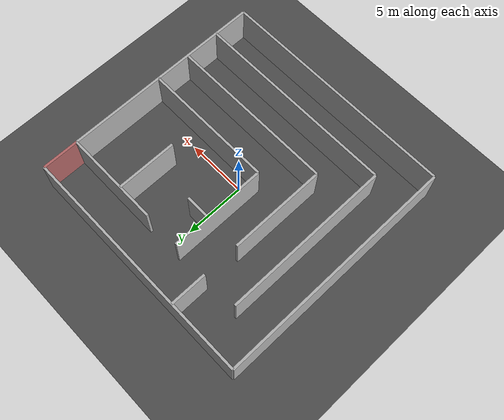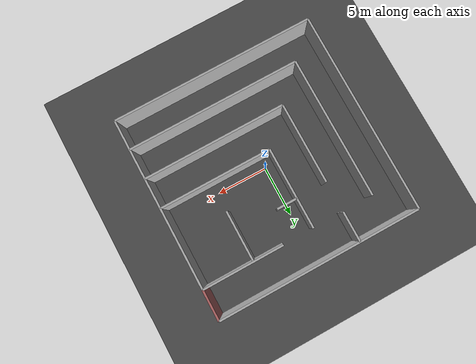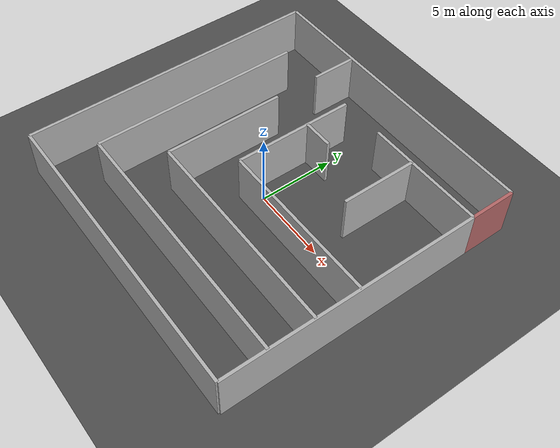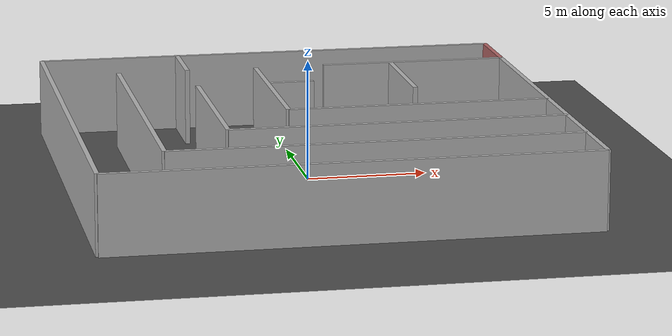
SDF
<?xml version="1.0" ?>
<sdf version="1.9">
  <world name="maze">
    <physics name="1ms" type="ignore">
      <max_step_size>0.001</max_step_size>
      <real_time_factor>1.0</real_time_factor>
    </physics>

    <plugin filename="gz-sim-physics-system"
      name="gz::sim::systems::Physics">
    </plugin>
    <plugin
      filename="gz-sim-sensors-system"
      name="gz::sim::systems::Sensors">
      <render_engine>ogre2</render_engine>
    </plugin>
    <plugin filename="gz-sim-user-commands-system"
      name="gz::sim::systems::UserCommands">
    </plugin>
    <plugin filename="gz-sim-scene-broadcaster-system"
      name="gz::sim::systems::SceneBroadcaster">
    </plugin>
    <plugin filename="gz-sim-air-pressure-system"
      name="gz::sim::systems::AirPressure">
    </plugin>
    <plugin filename="gz-sim-air-speed-system"
      name="gz::sim::systems::AirSpeed">
    </plugin>
    <plugin filename="gz-sim-altimeter-system"
      name="gz::sim::systems::Altimeter">
    </plugin>
    <plugin filename="gz-sim-imu-system"
      name="gz::sim::systems::Imu">
    </plugin>
    <plugin filename="gz-sim-magnetometer-system"
      name="gz::sim::systems::Magnetometer">
    </plugin>
    <plugin filename="gz-sim-navsat-system"
      name="gz::sim::systems::NavSat">
    </plugin>

    <scene>
      <ambient>1.0 1.0 1.0</ambient>
      <background>0.8 0.8 0.8</background>
      <sky></sky>
    </scene>

    <light type="directional" name="sun">
      <cast_shadows>true</cast_shadows>
      <pose>0 0 10 0 0 0</pose>
      <diffuse>0.8 0.8 0.8 1</diffuse>
      <specular>0.8 0.8 0.8 1</specular>
      <attenuation>
        <range>1000</range>
        <constant>0.9</constant>
        <linear>0.01</linear>
        <quadratic>0.001</quadratic>
      </attenuation>
      <direction>-0.5 0.1 -0.9</direction>
    </light>

    <spherical_coordinates>
      <latitude_deg>-35.3632621</latitude_deg>
      <longitude_deg>149.1652374</longitude_deg>
      <elevation>10.0</elevation>
      <heading_deg>0</heading_deg>
      <surface_model>EARTH_WGS84</surface_model>
    </spherical_coordinates>

    <model name='maze'>
      <static>1</static>
      <link name='Wall_0'>
        <pose degrees="true">-10 -10 0 0 0 90</pose>
        <collision name='Wall_0_Collision'>
          <pose>10 0 1.25 0 0 0</pose>
          <geometry>
            <box>
              <size>20 0.2 4</size>
            </box>
          </geometry>
        </collision>
        <visual name='Wall_0_Visual'>
          <pose>10 0 1.25 0 0 0</pose>
          <geometry>
            <box>
              <size>20 0.2 4</size>
            </box>
          </geometry>
          <material>
            <diffuse>0.699999988 0.699999988 0.699999988 1</diffuse>
          </material>
        </visual>
      </link>

      <link name='Wall_1'>
        <pose>-10 -10 0 0 0 0</pose>
        <collision name='Wall_1_Collision'>
          <pose>10 0 1.25 0 0 0</pose>
          <geometry>
            <box>
              <size>20 0.2 4</size>
            </box>
          </geometry>
        </collision>
        <visual name='Wall_1_Visual'>
          <pose>10 0 1.25 0 0 0</pose>
          <geometry>
            <box>
              <size>20 0.2 4</size>
            </box>
          </geometry>
          <material>
            <diffuse>0.699999988 0.699999988 0.699999988 1</diffuse>
          </material>
        </visual>
      </link>

      <link name='Wall_2'>
        <pose degrees="true">10 -10 0 0 0 90</pose>
        <collision name='Wall_2_Collision'>
          <pose>8.5 0 1.25 0 0 0</pose>
          <geometry>
            <box>
              <size>17 0.2 4</size>
            </box>
          </geometry>
        </collision>
        <visual name='Wall_2_Visual'>
          <pose>8.5 0 1.25 0 0 0</pose>
          <geometry>
            <box>
              <size>17 0.2 4</size>
            </box>
          </geometry>
          <material>
            <diffuse>0.699999988 0.699999988 0.699999988 1</diffuse>
          </material>
        </visual>
      </link>

      <link name='Wall_3'>
        <pose>-10 10 0 0 0 0</pose>
        <collision name='Wall_3_Collision'>
          <pose>10 0 1.25 0 0 0</pose>
          <geometry>
            <box>
              <size>20 0.2 4</size>
            </box>
          </geometry>
        </collision>
        <visual name='Wall_3_Visual'>
          <pose>10 0 1.25 0 0 0</pose>
          <geometry>
            <box>
              <size>20 0.2 4</size>
            </box>
          </geometry>
          <material>
            <diffuse>0.699999988 0.699999988 0.699999988 1</diffuse>
          </material>
        </visual>
      </link>

      <link name='Wall_4'>
        <pose>-7 -7 0 0 0 0</pose>
        <collision name='Wall_4_Collision'>
          <pose>8.5 0 1.25 0 0 0</pose>
          <geometry>
            <box>
              <size>17 0.2 4</size>
            </box>
          </geometry>
        </collision>
        <visual name='Wall_4_Visual'>
          <pose>8.5 0 1.25 0 0 0</pose>
          <geometry>
            <box>
              <size>17 0.2 4</size>
            </box>
          </geometry>
          <material>
            <diffuse>0.699999988 0.699999988 0.699999988 1</diffuse>
          </material>
        </visual>
      </link>

      <link name='Wall_5'>
        <pose degrees="true">-7 -7 0 0 0 90</pose>
        <collision name='Wall_5_Collision'>
          <pose>7 0 1.25 0 0 0</pose>
          <geometry>
            <box>
              <size>14 0.2 4</size>
            </box>
          </geometry>
        </collision>
        <visual name='Wall_5_Visual'>
          <pose>7 0 1.25 0 0 0</pose>
          <geometry>
            <box>
              <size>14 0.2 4</size>
            </box>
          </geometry>
          <material>
            <diffuse>0.699999988 0.699999988 0.699999988 1</diffuse>
          </material>
        </visual>
      </link>

      <link name='Wall_6'>
        <pose>-4 -4 0 0 0 0</pose>
        <collision name='Wall_6_Collision'>
          <pose>7 0 1.25 0 0 0</pose>
          <geometry>
            <box>
              <size>14 0.2 4</size>
            </box>
          </geometry>
        </collision>
        <visual name='Wall_6_Visual'>
          <pose>7 0 1.25 0 0 0</pose>
          <geometry>
            <box>
              <size>14 0.2 4</size>
            </box>
          </geometry>
          <material>
            <diffuse>0.699999988 0.699999988 0.699999988 1</diffuse>
          </material>
        </visual>
      </link>

      <link name='Wall_7'>
        <pose degrees="true">-4 -4 0 0 0 90</pose>
        <collision name='Wall_7_Collision'>
          <pose>4 0 1.25 0 0 0</pose>
          <geometry>
            <box>
              <size>8 0.2 4</size>
            </box>
          </geometry>
        </collision>
        <visual name='Wall_7_Visual'>
          <pose>4 0 1.25 0 0 0</pose>
          <geometry>
            <box>
              <size>8 0.2 4</size>
            </box>
          </geometry>
          <material>
            <diffuse>0.699999988 0.699999988 0.699999988 1</diffuse>
          </material>
        </visual>
      </link>

      <link name='Wall_8'>
        <pose>-1 -1 0 0 0 0</pose>
        <collision name='Wall_8_Collision'>
          <pose>5.5 0 1.25 0 0 0</pose>
          <geometry>
            <box>
              <size>11 0.2 4</size>
            </box>
          </geometry>
        </collision>
        <visual name='Wall_8_Visual'>
          <pose>5.5 0 1.25 0 0 0</pose>
          <geometry>
            <box>
              <size>11 0.2 4</size>
            </box>
          </geometry>
          <material>
            <diffuse>0.699999988 0.699999988 0.699999988 1</diffuse>
          </material>
        </visual>
      </link>

      <link name='Wall_9'>
        <pose degrees="true">-1 -1 0 0 0 90</pose>
        <collision name='Wall_9_Collision'>
          <pose>4 0 1.25 0 0 0</pose>
          <geometry>
            <box>
              <size>8 0.2 4</size>
            </box>
          </geometry>
        </collision>
        <visual name='Wall_9_Visual'>
          <pose>4 0 1.25 0 0 0</pose>
          <geometry>
            <box>
              <size>8 0.2 4</size>
            </box>
          </geometry>
          <material>
            <diffuse>0.699999988 0.699999988 0.699999988 1</diffuse>
          </material>
        </visual>
      </link>

      <link name='Wall_10'>
        <pose degrees="true">-4 7 0 0 0 90</pose>
        <collision name='Wall_10_Collision'>
          <pose>1.5 0 1.25 0 0 0</pose>
          <geometry>
            <box>
              <size>3 0.2 4</size>
            </box>
          </geometry>
        </collision>
        <visual name='Wall_10_Visual'>
          <pose>1.5 0 1.25 0 0 0</pose>
          <geometry>
            <box>
              <size>3 0.2 4</size>
            </box>
          </geometry>
          <material>
            <diffuse>0.699999988 0.699999988 0.699999988 1</diffuse>
          </material>
        </visual>
      </link>

      <link name='Wall_11'>
        <pose>-1 4 0 0 0 0</pose>
        <collision name='Wall_11_Collision'>
          <pose>1 0 1.25 0 0 0</pose>
          <geometry>
            <box>
              <size>2 0.2 4</size>
            </box>
          </geometry>
        </collision>
        <visual name='Wall_11_Visual'>
          <pose>1 0 1.25 0 0 0</pose>
          <geometry>
            <box>
              <size>2 0.2 4</size>
            </box>
          </geometry>
          <material>
            <diffuse>0.699999988 0.699999988 0.699999988 1</diffuse>
          </material>
        </visual>
      </link>

      <link name='Wall_12'>
        <pose>2 7 0 0 0 0</pose>
        <collision name='Wall_12_Collision'>
          <pose>4 0 1.25 0 0 0</pose>
          <geometry>
            <box>
              <size>8 0.2 4</size>
            </box>
          </geometry>
        </collision>
        <visual name='Wall_12_Visual'>
          <pose>4 0 1.25 0 0 0</pose>
          <geometry>
            <box>
              <size>8 0.2 4</size>
            </box>
          </geometry>
          <material>
            <diffuse>0.699999988 0.699999988 0.699999988 1</diffuse>
          </material>
        </visual>
      </link>

      <link name='Wall_13'>
        <pose degrees="true">5 2 0 0 0 90</pose>
        <collision name='Wall_13_Collision'>
          <pose>2.5 0 1.25 0 0 0</pose>
          <geometry>
            <box>
              <size>5 0.2 4</size>
            </box>
          </geometry>
        </collision>
        <visual name='Wall_13_Visual'>
          <pose>2.5 0 1.25 0 0 0</pose>
          <geometry>
            <box>
              <size>5 0.2 4</size>
            </box>
          </geometry>
          <material>
            <diffuse>0.699999988 0.699999988 0.699999988 1</diffuse>
          </material>
        </visual>
      </link>
    </model>

    <model name="floor">
      <static>true</static>
      <link name="link">
        <collision name="collision">
          <geometry>
            <plane>
              <normal>0 0 1</normal>
              <size>100 100</size>
            </plane>
          </geometry>
          <surface>
            <friction>
              <ode>
                <mu>100</mu>
                <mu2>50</mu2>
              </ode>
            </friction>
          </surface>
        </collision>
        <visual name="visual">
          <cast_shadows>false</cast_shadows>
          <geometry>
            <plane>
              <normal>0 0 1</normal>
              <size>100 100</size>
            </plane>
          </geometry>
          <material>
            <diffuse>0.3 0.3 0.3 1</diffuse>
          </material>
        </visual>
      </link>
    </model>

    <model name="wall_east_closing">
      <static>true</static>
      <pose>10 8.5 0 0 0 0</pose>
      <link name="link">
        <collision name="collision">
          <pose>0 0 1.25 0 0 0</pose>
          <geometry><box><size>0.2 3.0 4</size></box></geometry>
        </collision>
        <visual name="visual">
          <pose>0 0 1.25 0 0 0</pose>
          <geometry><box><size>0.2 3.0 4</size></box></geometry>
          <material><diffuse>0.7 0.4 0.4 1</diffuse></material>
        </visual>
      </link>
    </model>
  </world>

</sdf>
